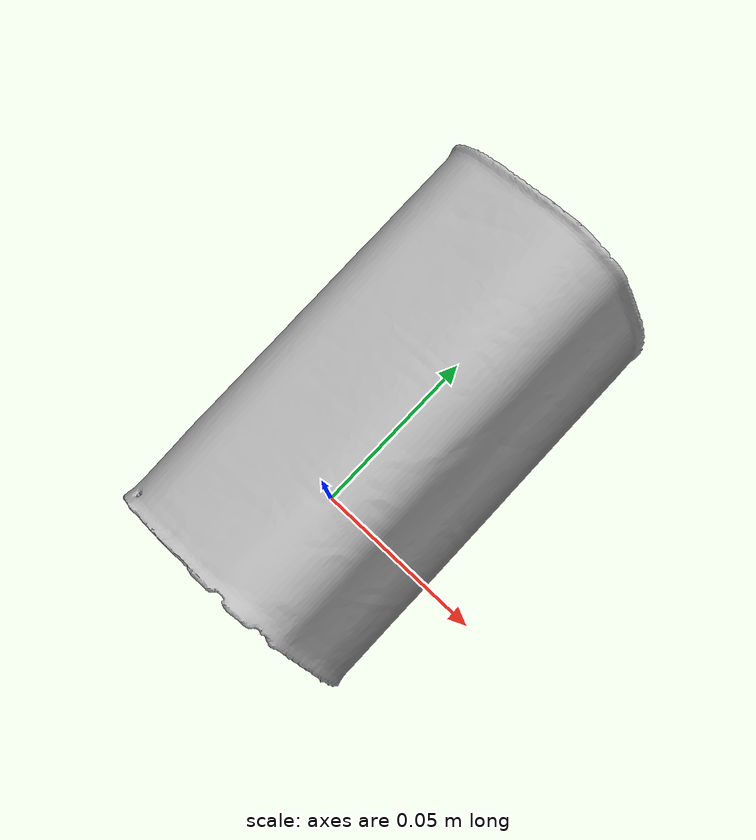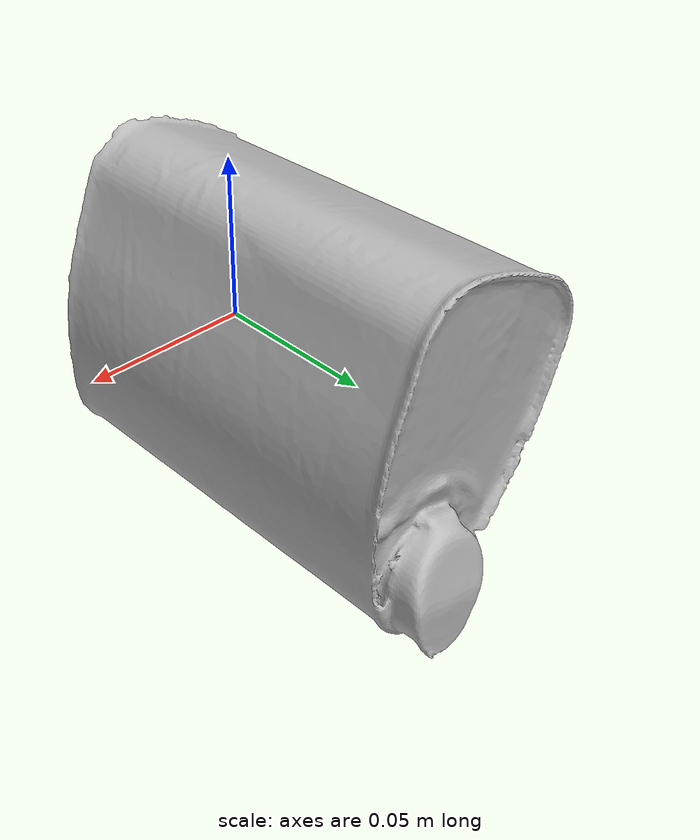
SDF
<?xml version='1.0'?>
<sdf version="1.4">
  <model name="LivioClassicOil">
    <static>false</static>
    <link name="link">
      <inertial>
        <pose>0.0022175006132347432 0.028617570196770525 0.003447221759026607 -1.5305696441308638 0.3872548811451159 -3.1328811225506104</pose>
        <mass>0.03704248541589654</mass>
        <inertia>
          <ixx>0.00014238587906133626</ixx>
          <ixy>-1.3452887118824389e-20</ixy>
          <ixz>1.156560462634287e-20</ixz>
          <iyy>0.00011490000144209609</iyy>
          <iyz>1.9353246416169348e-20</iyz>
          <izz>6.127231424803432e-05</izz>
        </inertia>
      </inertial>
      <collision name="collision">
        <geometry>
          <mesh>
            <!-- Use a downsampled mesh for collisions -->
            <uri>model:///LivioClassicOil/LivioClassicOil_250_collision.obj</uri>
	        </mesh>
        </geometry>
        <surface>
      </surface>
      </collision>
      <visual name="visual">
        <geometry>
          <mesh>
            <uri>model:///LivioClassicOil/LivioClassicOil_25k_tex.obj</uri>
	        </mesh>
        </geometry>
        <material>
          <script>
            <uri>model:///LivioClassicOil/LivioClassicOil.material</uri>
            <name>LivioClassicOil</name>
          </script>
        </material>
      </visual>
    </link>
  </model>
</sdf>
